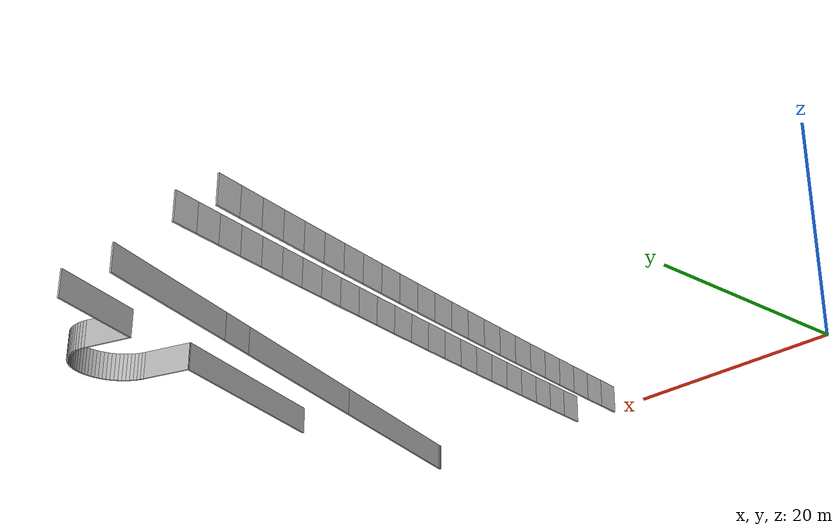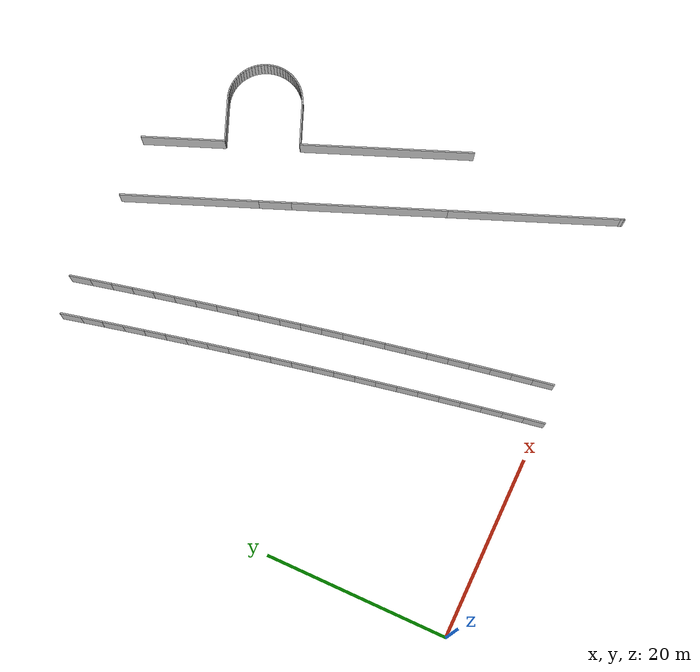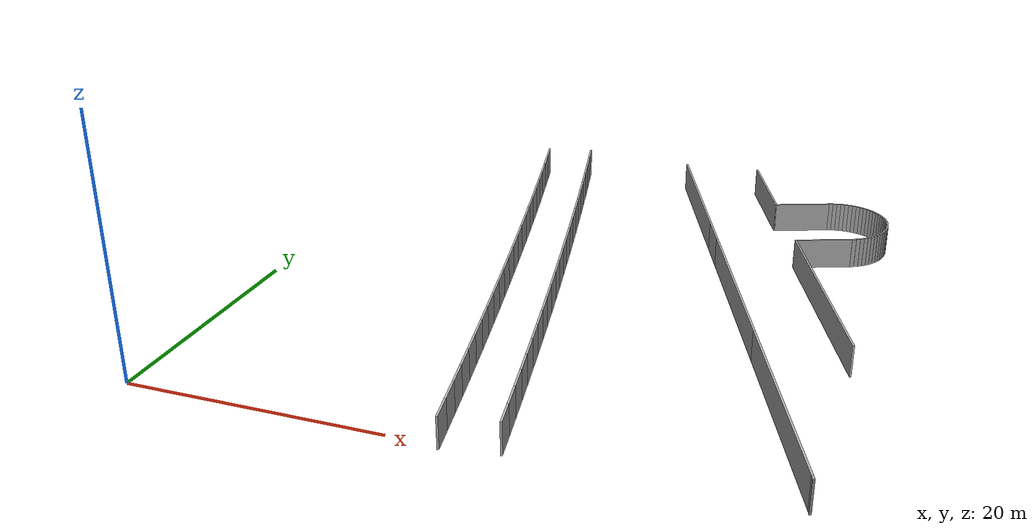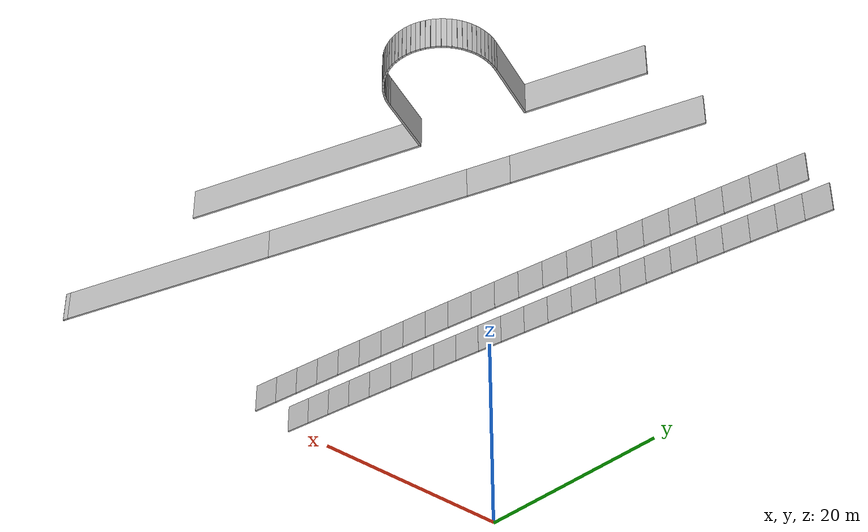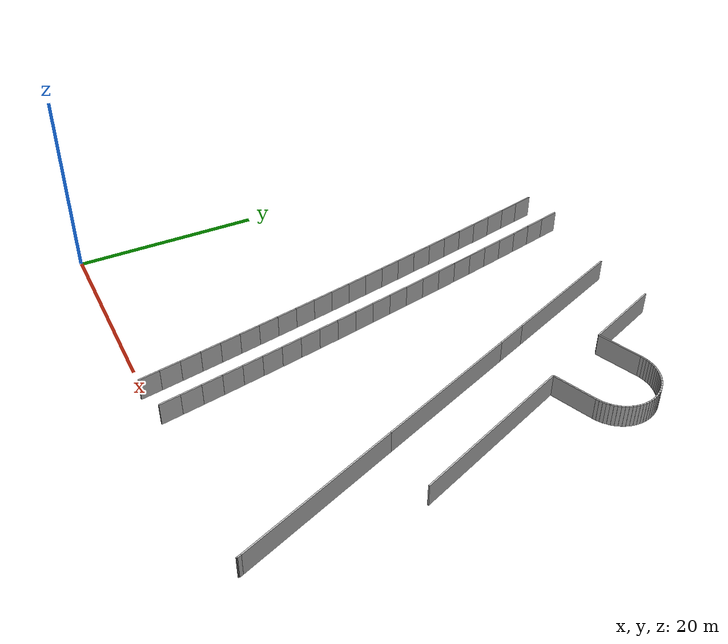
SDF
<?xml version="1.0" ?>
<sdf version="1.6">
  <model name="sps_4628">
    <pose frame="">0 0 0 0 -0 0</pose>
    <static>1</static>
    <self_collide>0</self_collide>
    <allow_auto_disable>0</allow_auto_disable>
    <link name="Wall80">
      <kinematic>0</kinematic>
      <gravity>1</gravity>
      <self_collide>0</self_collide>
      <collision name="collision">
        <geometry>
          <box>
            <size>0.0881448 0.15 2.5</size>
          </box>
        </geometry>
        <pose frame="">0 0 0 0 -0 0</pose>
      </collision>
      <visual name="visual">
        <geometry>
          <box>
            <size>0.0881448 0.15 2.5</size>
          </box>
        </geometry>
        <pose frame="">0 0 0 0 -0 0</pose>
        <cast_shadows>1</cast_shadows>
        <transparency>0.0</transparency>
      </visual>
      <pose frame="">47.404 0.571273 1.25 0 -0 0.37652</pose>
    </link>
    <link name="Wall156">
      <kinematic>0</kinematic>
      <gravity>1</gravity>
      <self_collide>0</self_collide>
      <collision name="collision">
        <geometry>
          <box>
            <size>3.44415 0.15 2.5</size>
          </box>
        </geometry>
        <pose frame="">0 0 0 0 -0 0</pose>
      </collision>
      <visual name="visual">
        <geometry>
          <box>
            <size>3.44415 0.15 2.5</size>
          </box>
        </geometry>
        <pose frame="">0 0 0 0 -0 0</pose>
        <cast_shadows>1</cast_shadows>
        <transparency>0.0</transparency>
      </visual>
      <pose frame="">33.8346 34.9045 1.25 0 0 -1.19321</pose>
    </link>
    <link name="Wall157">
      <kinematic>0</kinematic>
      <gravity>1</gravity>
      <self_collide>0</self_collide>
      <collision name="collision">
        <geometry>
          <box>
            <size>16.5785 0.15 2.5</size>
          </box>
        </geometry>
        <pose frame="">0 0 0 0 -0 0</pose>
      </collision>
      <visual name="visual">
        <geometry>
          <box>
            <size>16.5785 0.15 2.5</size>
          </box>
        </geometry>
        <pose frame="">0 0 0 0 -0 0</pose>
        <cast_shadows>1</cast_shadows>
        <transparency>0.0</transparency>
      </visual>
      <pose frame="">37.5255 25.5984 1.25 0 0 -1.19321</pose>
    </link>
    <link name="Wall158">
      <kinematic>0</kinematic>
      <gravity>1</gravity>
      <self_collide>0</self_collide>
      <collision name="collision">
        <geometry>
          <box>
            <size>18.2175 0.15 2.5</size>
          </box>
        </geometry>
        <pose frame="">0 0 0 0 -0 0</pose>
      </collision>
      <visual name="visual">
        <geometry>
          <box>
            <size>18.2175 0.15 2.5</size>
          </box>
        </geometry>
        <pose frame="">0 0 0 0 -0 0</pose>
        <cast_shadows>1</cast_shadows>
        <transparency>0.0</transparency>
      </visual>
      <pose frame="">43.9397 9.42598 1.25 0 0 -1.19321</pose>
    </link>
    <link name="Wall322">
      <kinematic>0</kinematic>
      <gravity>1</gravity>
      <self_collide>0</self_collide>
      <collision name="collision">
        <geometry>
          <box>
            <size>4.74975 0.15 2.5</size>
          </box>
        </geometry>
        <pose frame="">0 0 0 0 -0 0</pose>
      </collision>
      <visual name="visual">
        <geometry>
          <box>
            <size>4.74975 0.15 2.5</size>
          </box>
        </geometry>
        <pose frame="">0 0 0 0 -0 0</pose>
        <cast_shadows>1</cast_shadows>
        <transparency>0.0</transparency>
      </visual>
      <pose frame="">39.9748 43.4954 1.25 0 0 -2.76404</pose>
    </link>
    <link name="Wall388">
      <kinematic>0</kinematic>
      <gravity>1</gravity>
      <self_collide>0</self_collide>
      <collision name="collision">
        <geometry>
          <box>
            <size>8.94427 0.15 2.5</size>
          </box>
        </geometry>
        <pose frame="">0 0 0 0 -0 0</pose>
      </collision>
      <visual name="visual">
        <geometry>
          <box>
            <size>8.94427 0.15 2.5</size>
          </box>
        </geometry>
        <pose frame="">0 0 0 0 -0 0</pose>
        <cast_shadows>1</cast_shadows>
        <transparency>0.0</transparency>
      </visual>
      <pose frame="">36.1183 46.7769 1.25 0 0 -1.19318</pose>
    </link>
    <link name="Wall389">
      <kinematic>0</kinematic>
      <gravity>1</gravity>
      <self_collide>0</self_collide>
      <collision name="collision">
        <geometry>
          <box>
            <size>18.6084 0.15 2.5</size>
          </box>
        </geometry>
        <pose frame="">0 0 0 0 -0 0</pose>
      </collision>
      <visual name="visual">
        <geometry>
          <box>
            <size>18.6084 0.15 2.5</size>
          </box>
        </geometry>
        <pose frame="">0 0 0 0 -0 0</pose>
        <cast_shadows>1</cast_shadows>
        <transparency>0.0</transparency>
      </visual>
      <pose frame="">44.1558 26.5383 1.25 0 0 -1.19216</pose>
    </link>
    <link name="Wall488">
      <kinematic>0</kinematic>
      <gravity>1</gravity>
      <self_collide>0</self_collide>
      <collision name="collision">
        <geometry>
          <box>
            <size>4.75138 0.15 2.5</size>
          </box>
        </geometry>
        <pose frame="">0 0 0 0 -0 0</pose>
      </collision>
      <visual name="visual">
        <geometry>
          <box>
            <size>4.75138 0.15 2.5</size>
          </box>
        </geometry>
        <pose frame="">0 0 0 0 -0 0</pose>
        <cast_shadows>1</cast_shadows>
        <transparency>0.0</transparency>
      </visual>
      <pose frame="">42.9249 36.0592 1.25 0 -0 0.377513</pose>
    </link>
    <link name="Wall585">
      <kinematic>0</kinematic>
      <gravity>1</gravity>
      <self_collide>0</self_collide>
      <collision name="collision">
        <geometry>
          <box>
            <size>14.7591 0.15 2.5</size>
          </box>
        </geometry>
        <pose frame="">0 0 0 0 -0 0</pose>
      </collision>
      <visual name="visual">
        <geometry>
          <box>
            <size>14.7591 0.15 2.5</size>
          </box>
        </geometry>
        <pose frame="">0 0 0 0 -0 0</pose>
        <cast_shadows>1</cast_shadows>
        <transparency>0.0</transparency>
      </visual>
      <pose frame="">30.4788 43.3649 1.25 0 0 -1.19318</pose>
    </link>
    <link name="Wall587">
      <kinematic>0</kinematic>
      <gravity>1</gravity>
      <self_collide>0</self_collide>
      <collision name="collision">
        <geometry>
          <box>
            <size>0.39949 0.15 2.5</size>
          </box>
        </geometry>
        <pose frame="">0 0 0 0 -0 0</pose>
      </collision>
      <visual name="visual">
        <geometry>
          <box>
            <size>0.39949 0.15 2.5</size>
          </box>
        </geometry>
        <pose frame="">0 0 0 0 -0 0</pose>
        <cast_shadows>1</cast_shadows>
        <transparency>0.0</transparency>
      </visual>
      <pose frame="">47.3715 0.773177 1.25 0 0 -1.19355</pose>
    </link>
    <link name="Wall4621">
      <kinematic>0</kinematic>
      <gravity>1</gravity>
      <self_collide>0</self_collide>
      <collision name="collision">
        <geometry>
          <box>
            <size>2.25472 0.15 2.5</size>
          </box>
        </geometry>
        <pose frame="">0 0 0 0 -0 0</pose>
      </collision>
      <visual name="visual">
        <geometry>
          <box>
            <size>2.25472 0.15 2.5</size>
          </box>
        </geometry>
        <pose frame="">0 0 0 0 -0 0</pose>
        <cast_shadows>1</cast_shadows>
        <transparency>0.0</transparency>
      </visual>
      <pose frame="">27.8527 1.40709 1.25 0 -0 1.74643</pose>
    </link>
    <link name="Wall4622">
      <kinematic>0</kinematic>
      <gravity>1</gravity>
      <self_collide>0</self_collide>
      <collision name="collision">
        <geometry>
          <box>
            <size>2.25462 0.15 2.5</size>
          </box>
        </geometry>
        <pose frame="">0 0 0 0 -0 0</pose>
      </collision>
      <visual name="visual">
        <geometry>
          <box>
            <size>2.25462 0.15 2.5</size>
          </box>
        </geometry>
        <pose frame="">0 0 0 0 -0 0</pose>
        <cast_shadows>1</cast_shadows>
        <transparency>0.0</transparency>
      </visual>
      <pose frame="">27.456 3.6266 1.25 0 -0 1.74881</pose>
    </link>
    <link name="Wall4623">
      <kinematic>0</kinematic>
      <gravity>1</gravity>
      <self_collide>0</self_collide>
      <collision name="collision">
        <geometry>
          <box>
            <size>2.25462 0.15 2.5</size>
          </box>
        </geometry>
        <pose frame="">0 0 0 0 -0 0</pose>
      </collision>
      <visual name="visual">
        <geometry>
          <box>
            <size>2.25462 0.15 2.5</size>
          </box>
        </geometry>
        <pose frame="">0 0 0 0 -0 0</pose>
        <cast_shadows>1</cast_shadows>
        <transparency>0.0</transparency>
      </visual>
      <pose frame="">27.0541 5.84511 1.25 0 -0 1.75123</pose>
    </link>
    <link name="Wall4624">
      <kinematic>0</kinematic>
      <gravity>1</gravity>
      <self_collide>0</self_collide>
      <collision name="collision">
        <geometry>
          <box>
            <size>2.25472 0.15 2.5</size>
          </box>
        </geometry>
        <pose frame="">0 0 0 0 -0 0</pose>
      </collision>
      <visual name="visual">
        <geometry>
          <box>
            <size>2.25472 0.15 2.5</size>
          </box>
        </geometry>
        <pose frame="">0 0 0 0 -0 0</pose>
        <cast_shadows>1</cast_shadows>
        <transparency>0.0</transparency>
      </visual>
      <pose frame="">26.6469 8.0627 1.25 0 -0 1.75356</pose>
    </link>
    <link name="Wall4625">
      <kinematic>0</kinematic>
      <gravity>1</gravity>
      <self_collide>0</self_collide>
      <collision name="collision">
        <geometry>
          <box>
            <size>2.25452 0.15 2.5</size>
          </box>
        </geometry>
        <pose frame="">0 0 0 0 -0 0</pose>
      </collision>
      <visual name="visual">
        <geometry>
          <box>
            <size>2.25452 0.15 2.5</size>
          </box>
        </geometry>
        <pose frame="">0 0 0 0 -0 0</pose>
        <cast_shadows>1</cast_shadows>
        <transparency>0.0</transparency>
      </visual>
      <pose frame="">26.2345 10.2793 1.25 0 -0 1.75592</pose>
    </link>
    <link name="Wall4626">
      <kinematic>0</kinematic>
      <gravity>1</gravity>
      <self_collide>0</self_collide>
      <collision name="collision">
        <geometry>
          <box>
            <size>2.25475 0.15 2.5</size>
          </box>
        </geometry>
        <pose frame="">0 0 0 0 -0 0</pose>
      </collision>
      <visual name="visual">
        <geometry>
          <box>
            <size>2.25475 0.15 2.5</size>
          </box>
        </geometry>
        <pose frame="">0 0 0 0 -0 0</pose>
        <cast_shadows>1</cast_shadows>
        <transparency>0.0</transparency>
      </visual>
      <pose frame="">25.8169 12.4949 1.25 0 -0 1.75835</pose>
    </link>
    <link name="Wall4627">
      <kinematic>0</kinematic>
      <gravity>1</gravity>
      <self_collide>0</self_collide>
      <collision name="collision">
        <geometry>
          <box>
            <size>2.25399 0.15 2.5</size>
          </box>
        </geometry>
        <pose frame="">0 0 0 0 -0 0</pose>
      </collision>
      <visual name="visual">
        <geometry>
          <box>
            <size>2.25399 0.15 2.5</size>
          </box>
        </geometry>
        <pose frame="">0 0 0 0 -0 0</pose>
        <cast_shadows>1</cast_shadows>
        <transparency>0.0</transparency>
      </visual>
      <pose frame="">25.3937 14.7092 1.25 0 -0 1.76092</pose>
    </link>
    <link name="Wall4628">
      <kinematic>0</kinematic>
      <gravity>1</gravity>
      <self_collide>0</self_collide>
      <collision name="collision">
        <geometry>
          <box>
            <size>2.2547 0.15 2.5</size>
          </box>
        </geometry>
        <pose frame="">0 0 0 0 -0 0</pose>
      </collision>
      <visual name="visual">
        <geometry>
          <box>
            <size>2.2547 0.15 2.5</size>
          </box>
        </geometry>
        <pose frame="">0 0 0 0 -0 0</pose>
        <cast_shadows>1</cast_shadows>
        <transparency>0.0</transparency>
      </visual>
      <pose frame="">24.9654 16.9225 1.25 0 -0 1.76296</pose>
    </link>
    <link name="Wall4629">
      <kinematic>0</kinematic>
      <gravity>1</gravity>
      <self_collide>0</self_collide>
      <collision name="collision">
        <geometry>
          <box>
            <size>2.2546 0.15 2.5</size>
          </box>
        </geometry>
        <pose frame="">0 0 0 0 -0 0</pose>
      </collision>
      <visual name="visual">
        <geometry>
          <box>
            <size>2.2546 0.15 2.5</size>
          </box>
        </geometry>
        <pose frame="">0 0 0 0 -0 0</pose>
        <cast_shadows>1</cast_shadows>
        <transparency>0.0</transparency>
      </visual>
      <pose frame="">24.5321 19.1351 1.25 0 -0 1.76542</pose>
    </link>
    <link name="Wall4630">
      <kinematic>0</kinematic>
      <gravity>1</gravity>
      <self_collide>0</self_collide>
      <collision name="collision">
        <geometry>
          <box>
            <size>2.25467 0.15 2.5</size>
          </box>
        </geometry>
        <pose frame="">0 0 0 0 -0 0</pose>
      </collision>
      <visual name="visual">
        <geometry>
          <box>
            <size>2.25467 0.15 2.5</size>
          </box>
        </geometry>
        <pose frame="">0 0 0 0 -0 0</pose>
        <cast_shadows>1</cast_shadows>
        <transparency>0.0</transparency>
      </visual>
      <pose frame="">24.0933 21.3466 1.25 0 -0 1.76793</pose>
    </link>
    <link name="Wall4631">
      <kinematic>0</kinematic>
      <gravity>1</gravity>
      <self_collide>0</self_collide>
      <collision name="collision">
        <geometry>
          <box>
            <size>2.25445 0.15 2.5</size>
          </box>
        </geometry>
        <pose frame="">0 0 0 0 -0 0</pose>
      </collision>
      <visual name="visual">
        <geometry>
          <box>
            <size>2.25445 0.15 2.5</size>
          </box>
        </geometry>
        <pose frame="">0 0 0 0 -0 0</pose>
        <cast_shadows>1</cast_shadows>
        <transparency>0.0</transparency>
      </visual>
      <pose frame="">23.6492 23.557 1.25 0 -0 1.77021</pose>
    </link>
    <link name="Wall4632">
      <kinematic>0</kinematic>
      <gravity>1</gravity>
      <self_collide>0</self_collide>
      <collision name="collision">
        <geometry>
          <box>
            <size>2.25471 0.15 2.5</size>
          </box>
        </geometry>
        <pose frame="">0 0 0 0 -0 0</pose>
      </collision>
      <visual name="visual">
        <geometry>
          <box>
            <size>2.25471 0.15 2.5</size>
          </box>
        </geometry>
        <pose frame="">0 0 0 0 -0 0</pose>
        <cast_shadows>1</cast_shadows>
        <transparency>0.0</transparency>
      </visual>
      <pose frame="">23.2 25.7664 1.25 0 -0 1.77253</pose>
    </link>
    <link name="Wall4633">
      <kinematic>0</kinematic>
      <gravity>1</gravity>
      <self_collide>0</self_collide>
      <collision name="collision">
        <geometry>
          <box>
            <size>2.25463 0.15 2.5</size>
          </box>
        </geometry>
        <pose frame="">0 0 0 0 -0 0</pose>
      </collision>
      <visual name="visual">
        <geometry>
          <box>
            <size>2.25463 0.15 2.5</size>
          </box>
        </geometry>
        <pose frame="">0 0 0 0 -0 0</pose>
        <cast_shadows>1</cast_shadows>
        <transparency>0.0</transparency>
      </visual>
      <pose frame="">22.7456 27.9748 1.25 0 -0 1.77492</pose>
    </link>
    <link name="Wall4634">
      <kinematic>0</kinematic>
      <gravity>1</gravity>
      <self_collide>0</self_collide>
      <collision name="collision">
        <geometry>
          <box>
            <size>2.25471 0.15 2.5</size>
          </box>
        </geometry>
        <pose frame="">0 0 0 0 -0 0</pose>
      </collision>
      <visual name="visual">
        <geometry>
          <box>
            <size>2.25471 0.15 2.5</size>
          </box>
        </geometry>
        <pose frame="">0 0 0 0 -0 0</pose>
        <cast_shadows>1</cast_shadows>
        <transparency>0.0</transparency>
      </visual>
      <pose frame="">22.2858 30.1821 1.25 0 -0 1.77734</pose>
    </link>
    <link name="Wall4635">
      <kinematic>0</kinematic>
      <gravity>1</gravity>
      <self_collide>0</self_collide>
      <collision name="collision">
        <geometry>
          <box>
            <size>2.25465 0.15 2.5</size>
          </box>
        </geometry>
        <pose frame="">0 0 0 0 -0 0</pose>
      </collision>
      <visual name="visual">
        <geometry>
          <box>
            <size>2.25465 0.15 2.5</size>
          </box>
        </geometry>
        <pose frame="">0 0 0 0 -0 0</pose>
        <cast_shadows>1</cast_shadows>
        <transparency>0.0</transparency>
      </visual>
      <pose frame="">21.8209 32.3883 1.25 0 -0 1.7797</pose>
    </link>
    <link name="Wall4636">
      <kinematic>0</kinematic>
      <gravity>1</gravity>
      <self_collide>0</self_collide>
      <collision name="collision">
        <geometry>
          <box>
            <size>2.25454 0.15 2.5</size>
          </box>
        </geometry>
        <pose frame="">0 0 0 0 -0 0</pose>
      </collision>
      <visual name="visual">
        <geometry>
          <box>
            <size>2.25454 0.15 2.5</size>
          </box>
        </geometry>
        <pose frame="">0 0 0 0 -0 0</pose>
        <cast_shadows>1</cast_shadows>
        <transparency>0.0</transparency>
      </visual>
      <pose frame="">21.3507 34.5933 1.25 0 -0 1.78207</pose>
    </link>
    <link name="Wall4637">
      <kinematic>0</kinematic>
      <gravity>1</gravity>
      <self_collide>0</self_collide>
      <collision name="collision">
        <geometry>
          <box>
            <size>2.25467 0.15 2.5</size>
          </box>
        </geometry>
        <pose frame="">0 0 0 0 -0 0</pose>
      </collision>
      <visual name="visual">
        <geometry>
          <box>
            <size>2.25467 0.15 2.5</size>
          </box>
        </geometry>
        <pose frame="">0 0 0 0 -0 0</pose>
        <cast_shadows>1</cast_shadows>
        <transparency>0.0</transparency>
      </visual>
      <pose frame="">20.8752 36.7972 1.25 0 -0 1.78452</pose>
    </link>
    <link name="Wall4638">
      <kinematic>0</kinematic>
      <gravity>1</gravity>
      <self_collide>0</self_collide>
      <collision name="collision">
        <geometry>
          <box>
            <size>2.25482 0.15 2.5</size>
          </box>
        </geometry>
        <pose frame="">0 0 0 0 -0 0</pose>
      </collision>
      <visual name="visual">
        <geometry>
          <box>
            <size>2.25482 0.15 2.5</size>
          </box>
        </geometry>
        <pose frame="">0 0 0 0 -0 0</pose>
        <cast_shadows>1</cast_shadows>
        <transparency>0.0</transparency>
      </visual>
      <pose frame="">20.3944 39.0001 1.25 0 -0 1.78686</pose>
    </link>
    <link name="Wall4639">
      <kinematic>0</kinematic>
      <gravity>1</gravity>
      <self_collide>0</self_collide>
      <collision name="collision">
        <geometry>
          <box>
            <size>2.25435 0.15 2.5</size>
          </box>
        </geometry>
        <pose frame="">0 0 0 0 -0 0</pose>
      </collision>
      <visual name="visual">
        <geometry>
          <box>
            <size>2.25435 0.15 2.5</size>
          </box>
        </geometry>
        <pose frame="">0 0 0 0 -0 0</pose>
        <cast_shadows>1</cast_shadows>
        <transparency>0.0</transparency>
      </visual>
      <pose frame="">19.9085 41.2017 1.25 0 -0 1.78918</pose>
    </link>
    <link name="Wall4640">
      <kinematic>0</kinematic>
      <gravity>1</gravity>
      <self_collide>0</self_collide>
      <collision name="collision">
        <geometry>
          <box>
            <size>2.25458 0.15 2.5</size>
          </box>
        </geometry>
        <pose frame="">0 0 0 0 -0 0</pose>
      </collision>
      <visual name="visual">
        <geometry>
          <box>
            <size>2.25458 0.15 2.5</size>
          </box>
        </geometry>
        <pose frame="">0 0 0 0 -0 0</pose>
        <cast_shadows>1</cast_shadows>
        <transparency>0.0</transparency>
      </visual>
      <pose frame="">19.4174 43.402 1.25 0 -0 1.79162</pose>
    </link>
    <link name="Wall4641">
      <kinematic>0</kinematic>
      <gravity>1</gravity>
      <self_collide>0</self_collide>
      <collision name="collision">
        <geometry>
          <box>
            <size>2.25469 0.15 2.5</size>
          </box>
        </geometry>
        <pose frame="">0 0 0 0 -0 0</pose>
      </collision>
      <visual name="visual">
        <geometry>
          <box>
            <size>2.25469 0.15 2.5</size>
          </box>
        </geometry>
        <pose frame="">0 0 0 0 -0 0</pose>
        <cast_shadows>1</cast_shadows>
        <transparency>0.0</transparency>
      </visual>
      <pose frame="">18.921 45.6013 1.25 0 -0 1.79394</pose>
    </link>
    <link name="Wall4642">
      <kinematic>0</kinematic>
      <gravity>1</gravity>
      <self_collide>0</self_collide>
      <collision name="collision">
        <geometry>
          <box>
            <size>2.25436 0.15 2.5</size>
          </box>
        </geometry>
        <pose frame="">0 0 0 0 -0 0</pose>
      </collision>
      <visual name="visual">
        <geometry>
          <box>
            <size>2.25436 0.15 2.5</size>
          </box>
        </geometry>
        <pose frame="">0 0 0 0 -0 0</pose>
        <cast_shadows>1</cast_shadows>
        <transparency>0.0</transparency>
      </visual>
      <pose frame="">18.4193 47.7993 1.25 0 -0 1.79645</pose>
    </link>
    <link name="Wall4643">
      <kinematic>0</kinematic>
      <gravity>1</gravity>
      <self_collide>0</self_collide>
      <collision name="collision">
        <geometry>
          <box>
            <size>2.25453 0.15 2.5</size>
          </box>
        </geometry>
        <pose frame="">0 0 0 0 -0 0</pose>
      </collision>
      <visual name="visual">
        <geometry>
          <box>
            <size>2.25453 0.15 2.5</size>
          </box>
        </geometry>
        <pose frame="">0 0 0 0 -0 0</pose>
        <cast_shadows>1</cast_shadows>
        <transparency>0.0</transparency>
      </visual>
      <pose frame="">17.9123 49.996 1.25 0 -0 1.79882</pose>
    </link>
    <link name="Wall6346">
      <kinematic>0</kinematic>
      <gravity>1</gravity>
      <self_collide>0</self_collide>
      <collision name="collision">
        <geometry>
          <box>
            <size>2.24468 0.15 2.5</size>
          </box>
        </geometry>
        <pose frame="">0 0 0 0 -0 0</pose>
      </collision>
      <visual name="visual">
        <geometry>
          <box>
            <size>2.24468 0.15 2.5</size>
          </box>
        </geometry>
        <pose frame="">0 0 0 0 -0 0</pose>
        <cast_shadows>1</cast_shadows>
        <transparency>0.0</transparency>
      </visual>
      <pose frame="">23.7769 0.683394 1.25 0 -0 1.74643</pose>
    </link>
    <link name="Wall6347">
      <kinematic>0</kinematic>
      <gravity>1</gravity>
      <self_collide>0</self_collide>
      <collision name="collision">
        <geometry>
          <box>
            <size>2.24487 0.15 2.5</size>
          </box>
        </geometry>
        <pose frame="">0 0 0 0 -0 0</pose>
      </collision>
      <visual name="visual">
        <geometry>
          <box>
            <size>2.24487 0.15 2.5</size>
          </box>
        </geometry>
        <pose frame="">0 0 0 0 -0 0</pose>
        <cast_shadows>1</cast_shadows>
        <transparency>0.0</transparency>
      </visual>
      <pose frame="">23.3821 2.89317 1.25 0 -0 1.74876</pose>
    </link>
    <link name="Wall6348">
      <kinematic>0</kinematic>
      <gravity>1</gravity>
      <self_collide>0</self_collide>
      <collision name="collision">
        <geometry>
          <box>
            <size>2.2449 0.15 2.5</size>
          </box>
        </geometry>
        <pose frame="">0 0 0 0 -0 0</pose>
      </collision>
      <visual name="visual">
        <geometry>
          <box>
            <size>2.2449 0.15 2.5</size>
          </box>
        </geometry>
        <pose frame="">0 0 0 0 -0 0</pose>
        <cast_shadows>1</cast_shadows>
        <transparency>0.0</transparency>
      </visual>
      <pose frame="">22.982 5.1021 1.25 0 -0 1.75127</pose>
    </link>
    <link name="Wall6349">
      <kinematic>0</kinematic>
      <gravity>1</gravity>
      <self_collide>0</self_collide>
      <collision name="collision">
        <geometry>
          <box>
            <size>2.24452 0.15 2.5</size>
          </box>
        </geometry>
        <pose frame="">0 0 0 0 -0 0</pose>
      </collision>
      <visual name="visual">
        <geometry>
          <box>
            <size>2.24452 0.15 2.5</size>
          </box>
        </geometry>
        <pose frame="">0 0 0 0 -0 0</pose>
        <cast_shadows>1</cast_shadows>
        <transparency>0.0</transparency>
      </visual>
      <pose frame="">22.5766 7.30989 1.25 0 -0 1.75351</pose>
    </link>
    <link name="Wall6350">
      <kinematic>0</kinematic>
      <gravity>1</gravity>
      <self_collide>0</self_collide>
      <collision name="collision">
        <geometry>
          <box>
            <size>2.24496 0.15 2.5</size>
          </box>
        </geometry>
        <pose frame="">0 0 0 0 -0 0</pose>
      </collision>
      <visual name="visual">
        <geometry>
          <box>
            <size>2.24496 0.15 2.5</size>
          </box>
        </geometry>
        <pose frame="">0 0 0 0 -0 0</pose>
        <cast_shadows>1</cast_shadows>
        <transparency>0.0</transparency>
      </visual>
      <pose frame="">22.166 9.51677 1.25 0 -0 1.75591</pose>
    </link>
    <link name="Wall6351">
      <kinematic>0</kinematic>
      <gravity>1</gravity>
      <self_collide>0</self_collide>
      <collision name="collision">
        <geometry>
          <box>
            <size>2.24478 0.15 2.5</size>
          </box>
        </geometry>
        <pose frame="">0 0 0 0 -0 0</pose>
      </collision>
      <visual name="visual">
        <geometry>
          <box>
            <size>2.24478 0.15 2.5</size>
          </box>
        </geometry>
        <pose frame="">0 0 0 0 -0 0</pose>
        <cast_shadows>1</cast_shadows>
        <transparency>0.0</transparency>
      </visual>
      <pose frame="">21.7502 11.7228 1.25 0 -0 1.75828</pose>
    </link>
    <link name="Wall6352">
      <kinematic>0</kinematic>
      <gravity>1</gravity>
      <self_collide>0</self_collide>
      <collision name="collision">
        <geometry>
          <box>
            <size>2.24477 0.15 2.5</size>
          </box>
        </geometry>
        <pose frame="">0 0 0 0 -0 0</pose>
      </collision>
      <visual name="visual">
        <geometry>
          <box>
            <size>2.24477 0.15 2.5</size>
          </box>
        </geometry>
        <pose frame="">0 0 0 0 -0 0</pose>
        <cast_shadows>1</cast_shadows>
        <transparency>0.0</transparency>
      </visual>
      <pose frame="">21.3292 13.9277 1.25 0 -0 1.76072</pose>
    </link>
    <link name="Wall6353">
      <kinematic>0</kinematic>
      <gravity>1</gravity>
      <self_collide>0</self_collide>
      <collision name="collision">
        <geometry>
          <box>
            <size>2.24441 0.15 2.5</size>
          </box>
        </geometry>
        <pose frame="">0 0 0 0 -0 0</pose>
      </collision>
      <visual name="visual">
        <geometry>
          <box>
            <size>2.24441 0.15 2.5</size>
          </box>
        </geometry>
        <pose frame="">0 0 0 0 -0 0</pose>
        <cast_shadows>1</cast_shadows>
        <transparency>0.0</transparency>
      </visual>
      <pose frame="">20.9025 16.1314 1.25 0 -0 1.76332</pose>
    </link>
    <link name="Wall6354">
      <kinematic>0</kinematic>
      <gravity>1</gravity>
      <self_collide>0</self_collide>
      <collision name="collision">
        <geometry>
          <box>
            <size>2.24456 0.15 2.5</size>
          </box>
        </geometry>
        <pose frame="">0 0 0 0 -0 0</pose>
      </collision>
      <visual name="visual">
        <geometry>
          <box>
            <size>2.24456 0.15 2.5</size>
          </box>
        </geometry>
        <pose frame="">0 0 0 0 -0 0</pose>
        <cast_shadows>1</cast_shadows>
        <transparency>0.0</transparency>
      </visual>
      <pose frame="">20.4708 18.334 1.25 0 -0 1.76536</pose>
    </link>
    <link name="Wall6355">
      <kinematic>0</kinematic>
      <gravity>1</gravity>
      <self_collide>0</self_collide>
      <collision name="collision">
        <geometry>
          <box>
            <size>2.24507 0.15 2.5</size>
          </box>
        </geometry>
        <pose frame="">0 0 0 0 -0 0</pose>
      </collision>
      <visual name="visual">
        <geometry>
          <box>
            <size>2.24507 0.15 2.5</size>
          </box>
        </geometry>
        <pose frame="">0 0 0 0 -0 0</pose>
        <cast_shadows>1</cast_shadows>
        <transparency>0.0</transparency>
      </visual>
      <pose frame="">20.034 20.5359 1.25 0 -0 1.76789</pose>
    </link>
    <link name="Wall6356">
      <kinematic>0</kinematic>
      <gravity>1</gravity>
      <self_collide>0</self_collide>
      <collision name="collision">
        <geometry>
          <box>
            <size>2.24466 0.15 2.5</size>
          </box>
        </geometry>
        <pose frame="">0 0 0 0 -0 0</pose>
      </collision>
      <visual name="visual">
        <geometry>
          <box>
            <size>2.24466 0.15 2.5</size>
          </box>
        </geometry>
        <pose frame="">0 0 0 0 -0 0</pose>
        <cast_shadows>1</cast_shadows>
        <transparency>0.0</transparency>
      </visual>
      <pose frame="">19.5919 22.7368 1.25 0 -0 1.77018</pose>
    </link>
    <link name="Wall6357">
      <kinematic>0</kinematic>
      <gravity>1</gravity>
      <self_collide>0</self_collide>
      <collision name="collision">
        <geometry>
          <box>
            <size>2.24474 0.15 2.5</size>
          </box>
        </geometry>
        <pose frame="">0 0 0 0 -0 0</pose>
      </collision>
      <visual name="visual">
        <geometry>
          <box>
            <size>2.24474 0.15 2.5</size>
          </box>
        </geometry>
        <pose frame="">0 0 0 0 -0 0</pose>
        <cast_shadows>1</cast_shadows>
        <transparency>0.0</transparency>
      </visual>
      <pose frame="">19.1448 24.9365 1.25 0 -0 1.77253</pose>
    </link>
    <link name="Wall6358">
      <kinematic>0</kinematic>
      <gravity>1</gravity>
      <self_collide>0</self_collide>
      <collision name="collision">
        <geometry>
          <box>
            <size>2.24482 0.15 2.5</size>
          </box>
        </geometry>
        <pose frame="">0 0 0 0 -0 0</pose>
      </collision>
      <visual name="visual">
        <geometry>
          <box>
            <size>2.24482 0.15 2.5</size>
          </box>
        </geometry>
        <pose frame="">0 0 0 0 -0 0</pose>
        <cast_shadows>1</cast_shadows>
        <transparency>0.0</transparency>
      </visual>
      <pose frame="">18.6923 27.1352 1.25 0 -0 1.77499</pose>
    </link>
    <link name="Wall6359">
      <kinematic>0</kinematic>
      <gravity>1</gravity>
      <self_collide>0</self_collide>
      <collision name="collision">
        <geometry>
          <box>
            <size>2.24493 0.15 2.5</size>
          </box>
        </geometry>
        <pose frame="">0 0 0 0 -0 0</pose>
      </collision>
      <visual name="visual">
        <geometry>
          <box>
            <size>2.24493 0.15 2.5</size>
          </box>
        </geometry>
        <pose frame="">0 0 0 0 -0 0</pose>
        <cast_shadows>1</cast_shadows>
        <transparency>0.0</transparency>
      </visual>
      <pose frame="">18.2345 29.3329 1.25 0 -0 1.77737</pose>
    </link>
    <link name="Wall6360">
      <kinematic>0</kinematic>
      <gravity>1</gravity>
      <self_collide>0</self_collide>
      <collision name="collision">
        <geometry>
          <box>
            <size>2.24458 0.15 2.5</size>
          </box>
        </geometry>
        <pose frame="">0 0 0 0 -0 0</pose>
      </collision>
      <visual name="visual">
        <geometry>
          <box>
            <size>2.24458 0.15 2.5</size>
          </box>
        </geometry>
        <pose frame="">0 0 0 0 -0 0</pose>
        <cast_shadows>1</cast_shadows>
        <transparency>0.0</transparency>
      </visual>
      <pose frame="">17.7715 31.5294 1.25 0 -0 1.77965</pose>
    </link>
    <link name="Wall6361">
      <kinematic>0</kinematic>
      <gravity>1</gravity>
      <self_collide>0</self_collide>
      <collision name="collision">
        <geometry>
          <box>
            <size>2.24497 0.15 2.5</size>
          </box>
        </geometry>
        <pose frame="">0 0 0 0 -0 0</pose>
      </collision>
      <visual name="visual">
        <geometry>
          <box>
            <size>2.24497 0.15 2.5</size>
          </box>
        </geometry>
        <pose frame="">0 0 0 0 -0 0</pose>
        <cast_shadows>1</cast_shadows>
        <transparency>0.0</transparency>
      </visual>
      <pose frame="">17.3033 33.7248 1.25 0 -0 1.78217</pose>
    </link>
    <link name="Wall6362">
      <kinematic>0</kinematic>
      <gravity>1</gravity>
      <self_collide>0</self_collide>
      <collision name="collision">
        <geometry>
          <box>
            <size>2.24461 0.15 2.5</size>
          </box>
        </geometry>
        <pose frame="">0 0 0 0 -0 0</pose>
      </collision>
      <visual name="visual">
        <geometry>
          <box>
            <size>2.24461 0.15 2.5</size>
          </box>
        </geometry>
        <pose frame="">0 0 0 0 -0 0</pose>
        <cast_shadows>1</cast_shadows>
        <transparency>0.0</transparency>
      </visual>
      <pose frame="">16.8299 35.9191 1.25 0 -0 1.78438</pose>
    </link>
    <link name="Wall6363">
      <kinematic>0</kinematic>
      <gravity>1</gravity>
      <self_collide>0</self_collide>
      <collision name="collision">
        <geometry>
          <box>
            <size>2.24481 0.15 2.5</size>
          </box>
        </geometry>
        <pose frame="">0 0 0 0 -0 0</pose>
      </collision>
      <visual name="visual">
        <geometry>
          <box>
            <size>2.24481 0.15 2.5</size>
          </box>
        </geometry>
        <pose frame="">0 0 0 0 -0 0</pose>
        <cast_shadows>1</cast_shadows>
        <transparency>0.0</transparency>
      </visual>
      <pose frame="">16.3515 38.1122 1.25 0 -0 1.78683</pose>
    </link>
    <link name="Wall6364">
      <kinematic>0</kinematic>
      <gravity>1</gravity>
      <self_collide>0</self_collide>
      <collision name="collision">
        <geometry>
          <box>
            <size>2.24491 0.15 2.5</size>
          </box>
        </geometry>
        <pose frame="">0 0 0 0 -0 0</pose>
      </collision>
      <visual name="visual">
        <geometry>
          <box>
            <size>2.24491 0.15 2.5</size>
          </box>
        </geometry>
        <pose frame="">0 0 0 0 -0 0</pose>
        <cast_shadows>1</cast_shadows>
        <transparency>0.0</transparency>
      </visual>
      <pose frame="">15.8677 40.3043 1.25 0 -0 1.78919</pose>
    </link>
    <link name="Wall6365">
      <kinematic>0</kinematic>
      <gravity>1</gravity>
      <self_collide>0</self_collide>
      <collision name="collision">
        <geometry>
          <box>
            <size>2.24473 0.15 2.5</size>
          </box>
        </geometry>
        <pose frame="">0 0 0 0 -0 0</pose>
      </collision>
      <visual name="visual">
        <geometry>
          <box>
            <size>2.24473 0.15 2.5</size>
          </box>
        </geometry>
        <pose frame="">0 0 0 0 -0 0</pose>
        <cast_shadows>1</cast_shadows>
        <transparency>0.0</transparency>
      </visual>
      <pose frame="">15.3786 42.4952 1.25 0 -0 1.79169</pose>
    </link>
    <link name="Wall6366">
      <kinematic>0</kinematic>
      <gravity>1</gravity>
      <self_collide>0</self_collide>
      <collision name="collision">
        <geometry>
          <box>
            <size>2.2447 0.15 2.5</size>
          </box>
        </geometry>
        <pose frame="">0 0 0 0 -0 0</pose>
      </collision>
      <visual name="visual">
        <geometry>
          <box>
            <size>2.2447 0.15 2.5</size>
          </box>
        </geometry>
        <pose frame="">0 0 0 0 -0 0</pose>
        <cast_shadows>1</cast_shadows>
        <transparency>0.0</transparency>
      </visual>
      <pose frame="">14.8842 44.6848 1.25 0 -0 1.79398</pose>
    </link>
    <link name="Wall6367">
      <kinematic>0</kinematic>
      <gravity>1</gravity>
      <self_collide>0</self_collide>
      <collision name="collision">
        <geometry>
          <box>
            <size>2.24483 0.15 2.5</size>
          </box>
        </geometry>
        <pose frame="">0 0 0 0 -0 0</pose>
      </collision>
      <visual name="visual">
        <geometry>
          <box>
            <size>2.24483 0.15 2.5</size>
          </box>
        </geometry>
        <pose frame="">0 0 0 0 -0 0</pose>
        <cast_shadows>1</cast_shadows>
        <transparency>0.0</transparency>
      </visual>
      <pose frame="">14.3848 46.8733 1.25 0 -0 1.79631</pose>
    </link>
    <link name="Wall6368">
      <kinematic>0</kinematic>
      <gravity>1</gravity>
      <self_collide>0</self_collide>
      <collision name="collision">
        <geometry>
          <box>
            <size>2.24446 0.15 2.5</size>
          </box>
        </geometry>
        <pose frame="">0 0 0 0 -0 0</pose>
      </collision>
      <visual name="visual">
        <geometry>
          <box>
            <size>2.24446 0.15 2.5</size>
          </box>
        </geometry>
        <pose frame="">0 0 0 0 -0 0</pose>
        <cast_shadows>1</cast_shadows>
        <transparency>0.0</transparency>
      </visual>
      <pose frame="">13.8803 49.0605 1.25 0 -0 1.79874</pose>
    </link>
    <link name="Wall7311">
      <kinematic>0</kinematic>
      <gravity>1</gravity>
      <self_collide>0</self_collide>
      <collision name="collision">
        <geometry>
          <box>
            <size>0.348288 0.15 2.5</size>
          </box>
        </geometry>
        <pose frame="">0 0 0 0 -0 0</pose>
      </collision>
      <visual name="visual">
        <geometry>
          <box>
            <size>0.348288 0.15 2.5</size>
          </box>
        </geometry>
        <pose frame="">0 0 0 0 -0 0</pose>
        <cast_shadows>1</cast_shadows>
        <transparency>0.0</transparency>
      </visual>
      <pose frame="">45.292 37.0066 1.25 0 -0 0.424452</pose>
    </link>
    <link name="Wall7312">
      <kinematic>0</kinematic>
      <gravity>1</gravity>
      <self_collide>0</self_collide>
      <collision name="collision">
        <geometry>
          <box>
            <size>0.348329 0.15 2.5</size>
          </box>
        </geometry>
        <pose frame="">0 0 0 0 -0 0</pose>
      </collision>
      <visual name="visual">
        <geometry>
          <box>
            <size>0.348329 0.15 2.5</size>
          </box>
        </geometry>
        <pose frame="">0 0 0 0 -0 0</pose>
        <cast_shadows>1</cast_shadows>
        <transparency>0.0</transparency>
      </visual>
      <pose frame="">45.6026 37.1635 1.25 0 -0 0.510996</pose>
    </link>
    <link name="Wall7313">
      <kinematic>0</kinematic>
      <gravity>1</gravity>
      <self_collide>0</self_collide>
      <collision name="collision">
        <geometry>
          <box>
            <size>0.348315 0.15 2.5</size>
          </box>
        </geometry>
        <pose frame="">0 0 0 0 -0 0</pose>
      </collision>
      <visual name="visual">
        <geometry>
          <box>
            <size>0.348315 0.15 2.5</size>
          </box>
        </geometry>
        <pose frame="">0 0 0 0 -0 0</pose>
        <cast_shadows>1</cast_shadows>
        <transparency>0.0</transparency>
      </visual>
      <pose frame="">45.8984 37.3468 1.25 0 -0 0.598452</pose>
    </link>
    <link name="Wall7314">
      <kinematic>0</kinematic>
      <gravity>1</gravity>
      <self_collide>0</self_collide>
      <collision name="collision">
        <geometry>
          <box>
            <size>0.348333 0.15 2.5</size>
          </box>
        </geometry>
        <pose frame="">0 0 0 0 -0 0</pose>
      </collision>
      <visual name="visual">
        <geometry>
          <box>
            <size>0.348333 0.15 2.5</size>
          </box>
        </geometry>
        <pose frame="">0 0 0 0 -0 0</pose>
        <cast_shadows>1</cast_shadows>
        <transparency>0.0</transparency>
      </visual>
      <pose frame="">46.1771 37.5552 1.25 0 -0 0.685742</pose>
    </link>
    <link name="Wall7315">
      <kinematic>0</kinematic>
      <gravity>1</gravity>
      <self_collide>0</self_collide>
      <collision name="collision">
        <geometry>
          <box>
            <size>0.348231 0.15 2.5</size>
          </box>
        </geometry>
        <pose frame="">0 0 0 0 -0 0</pose>
      </collision>
      <visual name="visual">
        <geometry>
          <box>
            <size>0.348231 0.15 2.5</size>
          </box>
        </geometry>
        <pose frame="">0 0 0 0 -0 0</pose>
        <cast_shadows>1</cast_shadows>
        <transparency>0.0</transparency>
      </visual>
      <pose frame="">46.4365 37.787 1.25 0 -0 0.772508</pose>
    </link>
    <link name="Wall7316">
      <kinematic>0</kinematic>
      <gravity>1</gravity>
      <self_collide>0</self_collide>
      <collision name="collision">
        <geometry>
          <box>
            <size>0.348428 0.15 2.5</size>
          </box>
        </geometry>
        <pose frame="">0 0 0 0 -0 0</pose>
      </collision>
      <visual name="visual">
        <geometry>
          <box>
            <size>0.348428 0.15 2.5</size>
          </box>
        </geometry>
        <pose frame="">0 0 0 0 -0 0</pose>
        <cast_shadows>1</cast_shadows>
        <transparency>0.0</transparency>
      </visual>
      <pose frame="">46.6749 38.0405 1.25 0 -0 0.859662</pose>
    </link>
    <link name="Wall7317">
      <kinematic>0</kinematic>
      <gravity>1</gravity>
      <self_collide>0</self_collide>
      <collision name="collision">
        <geometry>
          <box>
            <size>0.348312 0.15 2.5</size>
          </box>
        </geometry>
        <pose frame="">0 0 0 0 -0 0</pose>
      </collision>
      <visual name="visual">
        <geometry>
          <box>
            <size>0.348312 0.15 2.5</size>
          </box>
        </geometry>
        <pose frame="">0 0 0 0 -0 0</pose>
        <cast_shadows>1</cast_shadows>
        <transparency>0.0</transparency>
      </visual>
      <pose frame="">46.8903 38.3139 1.25 0 -0 0.947308</pose>
    </link>
    <link name="Wall7318">
      <kinematic>0</kinematic>
      <gravity>1</gravity>
      <self_collide>0</self_collide>
      <collision name="collision">
        <geometry>
          <box>
            <size>0.348254 0.15 2.5</size>
          </box>
        </geometry>
        <pose frame="">0 0 0 0 -0 0</pose>
      </collision>
      <visual name="visual">
        <geometry>
          <box>
            <size>0.348254 0.15 2.5</size>
          </box>
        </geometry>
        <pose frame="">0 0 0 0 -0 0</pose>
        <cast_shadows>1</cast_shadows>
        <transparency>0.0</transparency>
      </visual>
      <pose frame="">47.0811 38.6049 1.25 0 -0 1.03356</pose>
    </link>
    <link name="Wall7319">
      <kinematic>0</kinematic>
      <gravity>1</gravity>
      <self_collide>0</self_collide>
      <collision name="collision">
        <geometry>
          <box>
            <size>0.348245 0.15 2.5</size>
          </box>
        </geometry>
        <pose frame="">0 0 0 0 -0 0</pose>
      </collision>
      <visual name="visual">
        <geometry>
          <box>
            <size>0.348245 0.15 2.5</size>
          </box>
        </geometry>
        <pose frame="">0 0 0 0 -0 0</pose>
        <cast_shadows>1</cast_shadows>
        <transparency>0.0</transparency>
      </visual>
      <pose frame="">47.246 38.9113 1.25 0 -0 1.12094</pose>
    </link>
    <link name="Wall7320">
      <kinematic>0</kinematic>
      <gravity>1</gravity>
      <self_collide>0</self_collide>
      <collision name="collision">
        <geometry>
          <box>
            <size>0.348461 0.15 2.5</size>
          </box>
        </geometry>
        <pose frame="">0 0 0 0 -0 0</pose>
      </collision>
      <visual name="visual">
        <geometry>
          <box>
            <size>0.348461 0.15 2.5</size>
          </box>
        </geometry>
        <pose frame="">0 0 0 0 -0 0</pose>
        <cast_shadows>1</cast_shadows>
        <transparency>0.0</transparency>
      </visual>
      <pose frame="">47.3835 39.231 1.25 0 -0 1.20821</pose>
    </link>
    <link name="Wall7321">
      <kinematic>0</kinematic>
      <gravity>1</gravity>
      <self_collide>0</self_collide>
      <collision name="collision">
        <geometry>
          <box>
            <size>0.348299 0.15 2.5</size>
          </box>
        </geometry>
        <pose frame="">0 0 0 0 -0 0</pose>
      </collision>
      <visual name="visual">
        <geometry>
          <box>
            <size>0.348299 0.15 2.5</size>
          </box>
        </geometry>
        <pose frame="">0 0 0 0 -0 0</pose>
        <cast_shadows>1</cast_shadows>
        <transparency>0.0</transparency>
      </visual>
      <pose frame="">47.4926 39.5615 1.25 0 -0 1.29572</pose>
    </link>
    <link name="Wall7322">
      <kinematic>0</kinematic>
      <gravity>1</gravity>
      <self_collide>0</self_collide>
      <collision name="collision">
        <geometry>
          <box>
            <size>0.348231 0.15 2.5</size>
          </box>
        </geometry>
        <pose frame="">0 0 0 0 -0 0</pose>
      </collision>
      <visual name="visual">
        <geometry>
          <box>
            <size>0.348231 0.15 2.5</size>
          </box>
        </geometry>
        <pose frame="">0 0 0 0 -0 0</pose>
        <cast_shadows>1</cast_shadows>
        <transparency>0.0</transparency>
      </visual>
      <pose frame="">47.5726 39.9001 1.25 0 -0 1.38196</pose>
    </link>
    <link name="Wall7323">
      <kinematic>0</kinematic>
      <gravity>1</gravity>
      <self_collide>0</self_collide>
      <collision name="collision">
        <geometry>
          <box>
            <size>0.348342 0.15 2.5</size>
          </box>
        </geometry>
        <pose frame="">0 0 0 0 -0 0</pose>
      </collision>
      <visual name="visual">
        <geometry>
          <box>
            <size>0.348342 0.15 2.5</size>
          </box>
        </geometry>
        <pose frame="">0 0 0 0 -0 0</pose>
        <cast_shadows>1</cast_shadows>
        <transparency>0.0</transparency>
      </visual>
      <pose frame="">47.6229 40.2444 1.25 0 -0 1.46952</pose>
    </link>
    <link name="Wall7324">
      <kinematic>0</kinematic>
      <gravity>1</gravity>
      <self_collide>0</self_collide>
      <collision name="collision">
        <geometry>
          <box>
            <size>0.348425 0.15 2.5</size>
          </box>
        </geometry>
        <pose frame="">0 0 0 0 -0 0</pose>
      </collision>
      <visual name="visual">
        <geometry>
          <box>
            <size>0.348425 0.15 2.5</size>
          </box>
        </geometry>
        <pose frame="">0 0 0 0 -0 0</pose>
        <cast_shadows>1</cast_shadows>
        <transparency>0.0</transparency>
      </visual>
      <pose frame="">47.643 40.5919 1.25 0 -0 1.55643</pose>
    </link>
    <link name="Wall7325">
      <kinematic>0</kinematic>
      <gravity>1</gravity>
      <self_collide>0</self_collide>
      <collision name="collision">
        <geometry>
          <box>
            <size>0.348156 0.15 2.5</size>
          </box>
        </geometry>
        <pose frame="">0 0 0 0 -0 0</pose>
      </collision>
      <visual name="visual">
        <geometry>
          <box>
            <size>0.348156 0.15 2.5</size>
          </box>
        </geometry>
        <pose frame="">0 0 0 0 -0 0</pose>
        <cast_shadows>1</cast_shadows>
        <transparency>0.0</transparency>
      </visual>
      <pose frame="">47.6328 40.9397 1.25 0 -0 1.64379</pose>
    </link>
    <link name="Wall7326">
      <kinematic>0</kinematic>
      <gravity>1</gravity>
      <self_collide>0</self_collide>
      <collision name="collision">
        <geometry>
          <box>
            <size>0.348459 0.15 2.5</size>
          </box>
        </geometry>
        <pose frame="">0 0 0 0 -0 0</pose>
      </collision>
      <visual name="visual">
        <geometry>
          <box>
            <size>0.348459 0.15 2.5</size>
          </box>
        </geometry>
        <pose frame="">0 0 0 0 -0 0</pose>
        <cast_shadows>1</cast_shadows>
        <transparency>0.0</transparency>
      </visual>
      <pose frame="">47.5923 41.2853 1.25 0 -0 1.73105</pose>
    </link>
    <link name="Wall7327">
      <kinematic>0</kinematic>
      <gravity>1</gravity>
      <self_collide>0</self_collide>
      <collision name="collision">
        <geometry>
          <box>
            <size>0.348172 0.15 2.5</size>
          </box>
        </geometry>
        <pose frame="">0 0 0 0 -0 0</pose>
      </collision>
      <visual name="visual">
        <geometry>
          <box>
            <size>0.348172 0.15 2.5</size>
          </box>
        </geometry>
        <pose frame="">0 0 0 0 -0 0</pose>
        <cast_shadows>1</cast_shadows>
        <transparency>0.0</transparency>
      </visual>
      <pose frame="">47.5219 41.6261 1.25 0 -0 1.81803</pose>
    </link>
    <link name="Wall7328">
      <kinematic>0</kinematic>
      <gravity>1</gravity>
      <self_collide>0</self_collide>
      <collision name="collision">
        <geometry>
          <box>
            <size>0.348467 0.15 2.5</size>
          </box>
        </geometry>
        <pose frame="">0 0 0 0 -0 0</pose>
      </collision>
      <visual name="visual">
        <geometry>
          <box>
            <size>0.348467 0.15 2.5</size>
          </box>
        </geometry>
        <pose frame="">0 0 0 0 -0 0</pose>
        <cast_shadows>1</cast_shadows>
        <transparency>0.0</transparency>
      </visual>
      <pose frame="">47.4222 41.9595 1.25 0 -0 1.90468</pose>
    </link>
    <link name="Wall7329">
      <kinematic>0</kinematic>
      <gravity>1</gravity>
      <self_collide>0</self_collide>
      <collision name="collision">
        <geometry>
          <box>
            <size>0.348252 0.15 2.5</size>
          </box>
        </geometry>
        <pose frame="">0 0 0 0 -0 0</pose>
      </collision>
      <visual name="visual">
        <geometry>
          <box>
            <size>0.348252 0.15 2.5</size>
          </box>
        </geometry>
        <pose frame="">0 0 0 0 -0 0</pose>
        <cast_shadows>1</cast_shadows>
        <transparency>0.0</transparency>
      </visual>
      <pose frame="">47.2939 42.283 1.25 0 -0 1.99203</pose>
    </link>
    <link name="Wall7330">
      <kinematic>0</kinematic>
      <gravity>1</gravity>
      <self_collide>0</self_collide>
      <collision name="collision">
        <geometry>
          <box>
            <size>0.348292 0.15 2.5</size>
          </box>
        </geometry>
        <pose frame="">0 0 0 0 -0 0</pose>
      </collision>
      <visual name="visual">
        <geometry>
          <box>
            <size>0.348292 0.15 2.5</size>
          </box>
        </geometry>
        <pose frame="">0 0 0 0 -0 0</pose>
        <cast_shadows>1</cast_shadows>
        <transparency>0.0</transparency>
      </visual>
      <pose frame="">47.1379 42.594 1.25 0 -0 2.07944</pose>
    </link>
    <link name="Wall7331">
      <kinematic>0</kinematic>
      <gravity>1</gravity>
      <self_collide>0</self_collide>
      <collision name="collision">
        <geometry>
          <box>
            <size>0.348374 0.15 2.5</size>
          </box>
        </geometry>
        <pose frame="">0 0 0 0 -0 0</pose>
      </collision>
      <visual name="visual">
        <geometry>
          <box>
            <size>0.348374 0.15 2.5</size>
          </box>
        </geometry>
        <pose frame="">0 0 0 0 -0 0</pose>
        <cast_shadows>1</cast_shadows>
        <transparency>0.0</transparency>
      </visual>
      <pose frame="">46.9553 42.8903 1.25 0 -0 2.16638</pose>
    </link>
    <link name="Wall7332">
      <kinematic>0</kinematic>
      <gravity>1</gravity>
      <self_collide>0</self_collide>
      <collision name="collision">
        <geometry>
          <box>
            <size>0.348305 0.15 2.5</size>
          </box>
        </geometry>
        <pose frame="">0 0 0 0 -0 0</pose>
      </collision>
      <visual name="visual">
        <geometry>
          <box>
            <size>0.348305 0.15 2.5</size>
          </box>
        </geometry>
        <pose frame="">0 0 0 0 -0 0</pose>
        <cast_shadows>1</cast_shadows>
        <transparency>0.0</transparency>
      </visual>
      <pose frame="">46.7477 43.1696 1.25 0 -0 2.25367</pose>
    </link>
    <link name="Wall7333">
      <kinematic>0</kinematic>
      <gravity>1</gravity>
      <self_collide>0</self_collide>
      <collision name="collision">
        <geometry>
          <box>
            <size>0.348332 0.15 2.5</size>
          </box>
        </geometry>
        <pose frame="">0 0 0 0 -0 0</pose>
      </collision>
      <visual name="visual">
        <geometry>
          <box>
            <size>0.348332 0.15 2.5</size>
          </box>
        </geometry>
        <pose frame="">0 0 0 0 -0 0</pose>
        <cast_shadows>1</cast_shadows>
        <transparency>0.0</transparency>
      </visual>
      <pose frame="">46.5167 43.4298 1.25 0 -0 2.34033</pose>
    </link>
    <link name="Wall7334">
      <kinematic>0</kinematic>
      <gravity>1</gravity>
      <self_collide>0</self_collide>
      <collision name="collision">
        <geometry>
          <box>
            <size>0.348227 0.15 2.5</size>
          </box>
        </geometry>
        <pose frame="">0 0 0 0 -0 0</pose>
      </collision>
      <visual name="visual">
        <geometry>
          <box>
            <size>0.348227 0.15 2.5</size>
          </box>
        </geometry>
        <pose frame="">0 0 0 0 -0 0</pose>
        <cast_shadows>1</cast_shadows>
        <transparency>0.0</transparency>
      </visual>
      <pose frame="">46.2639 43.6689 1.25 0 -0 2.42764</pose>
    </link>
    <link name="Wall7335">
      <kinematic>0</kinematic>
      <gravity>1</gravity>
      <self_collide>0</self_collide>
      <collision name="collision">
        <geometry>
          <box>
            <size>0.348325 0.15 2.5</size>
          </box>
        </geometry>
        <pose frame="">0 0 0 0 -0 0</pose>
      </collision>
      <visual name="visual">
        <geometry>
          <box>
            <size>0.348325 0.15 2.5</size>
          </box>
        </geometry>
        <pose frame="">0 0 0 0 -0 0</pose>
        <cast_shadows>1</cast_shadows>
        <transparency>0.0</transparency>
      </visual>
      <pose frame="">45.9913 43.8851 1.25 0 -0 2.51446</pose>
    </link>
    <link name="Wall7336">
      <kinematic>0</kinematic>
      <gravity>1</gravity>
      <self_collide>0</self_collide>
      <collision name="collision">
        <geometry>
          <box>
            <size>0.348262 0.15 2.5</size>
          </box>
        </geometry>
        <pose frame="">0 0 0 0 -0 0</pose>
      </collision>
      <visual name="visual">
        <geometry>
          <box>
            <size>0.348262 0.15 2.5</size>
          </box>
        </geometry>
        <pose frame="">0 0 0 0 -0 0</pose>
        <cast_shadows>1</cast_shadows>
        <transparency>0.0</transparency>
      </visual>
      <pose frame="">45.7009 44.0768 1.25 0 -0 2.60192</pose>
    </link>
    <link name="Wall7337">
      <kinematic>0</kinematic>
      <gravity>1</gravity>
      <self_collide>0</self_collide>
      <collision name="collision">
        <geometry>
          <box>
            <size>0.348341 0.15 2.5</size>
          </box>
        </geometry>
        <pose frame="">0 0 0 0 -0 0</pose>
      </collision>
      <visual name="visual">
        <geometry>
          <box>
            <size>0.348341 0.15 2.5</size>
          </box>
        </geometry>
        <pose frame="">0 0 0 0 -0 0</pose>
        <cast_shadows>1</cast_shadows>
        <transparency>0.0</transparency>
      </visual>
      <pose frame="">45.3949 44.2425 1.25 0 -0 2.68876</pose>
    </link>
    <link name="Wall7338">
      <kinematic>0</kinematic>
      <gravity>1</gravity>
      <self_collide>0</self_collide>
      <collision name="collision">
        <geometry>
          <box>
            <size>0.348345 0.15 2.5</size>
          </box>
        </geometry>
        <pose frame="">0 0 0 0 -0 0</pose>
      </collision>
      <visual name="visual">
        <geometry>
          <box>
            <size>0.348345 0.15 2.5</size>
          </box>
        </geometry>
        <pose frame="">0 0 0 0 -0 0</pose>
        <cast_shadows>1</cast_shadows>
        <transparency>0.0</transparency>
      </visual>
      <pose frame="">45.0756 44.3809 1.25 0 -0 2.77644</pose>
    </link>
    <link name="Wall7339">
      <kinematic>0</kinematic>
      <gravity>1</gravity>
      <self_collide>0</self_collide>
      <collision name="collision">
        <geometry>
          <box>
            <size>0.348457 0.15 2.5</size>
          </box>
        </geometry>
        <pose frame="">0 0 0 0 -0 0</pose>
      </collision>
      <visual name="visual">
        <geometry>
          <box>
            <size>0.348457 0.15 2.5</size>
          </box>
        </geometry>
        <pose frame="">0 0 0 0 -0 0</pose>
        <cast_shadows>1</cast_shadows>
        <transparency>0.0</transparency>
      </visual>
      <pose frame="">44.7454 44.491 1.25 0 -0 2.863</pose>
    </link>
    <link name="Wall7340">
      <kinematic>0</kinematic>
      <gravity>1</gravity>
      <self_collide>0</self_collide>
      <collision name="collision">
        <geometry>
          <box>
            <size>0.348153 0.15 2.5</size>
          </box>
        </geometry>
        <pose frame="">0 0 0 0 -0 0</pose>
      </collision>
      <visual name="visual">
        <geometry>
          <box>
            <size>0.348153 0.15 2.5</size>
          </box>
        </geometry>
        <pose frame="">0 0 0 0 -0 0</pose>
        <cast_shadows>1</cast_shadows>
        <transparency>0.0</transparency>
      </visual>
      <pose frame="">44.4069 44.572 1.25 0 -0 2.95021</pose>
    </link>
    <link name="Wall7341">
      <kinematic>0</kinematic>
      <gravity>1</gravity>
      <self_collide>0</self_collide>
      <collision name="collision">
        <geometry>
          <box>
            <size>0.34826 0.15 2.5</size>
          </box>
        </geometry>
        <pose frame="">0 0 0 0 -0 0</pose>
      </collision>
      <visual name="visual">
        <geometry>
          <box>
            <size>0.34826 0.15 2.5</size>
          </box>
        </geometry>
        <pose frame="">0 0 0 0 -0 0</pose>
        <cast_shadows>1</cast_shadows>
        <transparency>0.0</transparency>
      </visual>
      <pose frame="">44.0629 44.6232 1.25 0 -0 3.03748</pose>
    </link>
    <link name="Wall7342">
      <kinematic>0</kinematic>
      <gravity>1</gravity>
      <self_collide>0</self_collide>
      <collision name="collision">
        <geometry>
          <box>
            <size>0.34844 0.15 2.5</size>
          </box>
        </geometry>
        <pose frame="">0 0 0 0 -0 0</pose>
      </collision>
      <visual name="visual">
        <geometry>
          <box>
            <size>0.34844 0.15 2.5</size>
          </box>
        </geometry>
        <pose frame="">0 0 0 0 -0 0</pose>
        <cast_shadows>1</cast_shadows>
        <transparency>0.0</transparency>
      </visual>
      <pose frame="">43.7155 44.6443 1.25 0 -0 3.12443</pose>
    </link>
    <link name="Wall7343">
      <kinematic>0</kinematic>
      <gravity>1</gravity>
      <self_collide>0</self_collide>
      <collision name="collision">
        <geometry>
          <box>
            <size>0.348269 0.15 2.5</size>
          </box>
        </geometry>
        <pose frame="">0 0 0 0 -0 0</pose>
      </collision>
      <visual name="visual">
        <geometry>
          <box>
            <size>0.348269 0.15 2.5</size>
          </box>
        </geometry>
        <pose frame="">0 0 0 0 -0 0</pose>
        <cast_shadows>1</cast_shadows>
        <transparency>0.0</transparency>
      </visual>
      <pose frame="">43.3676 44.6351 1.25 0 0 -3.07143</pose>
    </link>
    <link name="Wall7344">
      <kinematic>0</kinematic>
      <gravity>1</gravity>
      <self_collide>0</self_collide>
      <collision name="collision">
        <geometry>
          <box>
            <size>0.348295 0.15 2.5</size>
          </box>
        </geometry>
        <pose frame="">0 0 0 0 -0 0</pose>
      </collision>
      <visual name="visual">
        <geometry>
          <box>
            <size>0.348295 0.15 2.5</size>
          </box>
        </geometry>
        <pose frame="">0 0 0 0 -0 0</pose>
        <cast_shadows>1</cast_shadows>
        <transparency>0.0</transparency>
      </visual>
      <pose frame="">43.0219 44.5956 1.25 0 0 -2.98428</pose>
    </link>
    <link name="Wall7345">
      <kinematic>0</kinematic>
      <gravity>1</gravity>
      <self_collide>0</self_collide>
      <collision name="collision">
        <geometry>
          <box>
            <size>0.348305 0.15 2.5</size>
          </box>
        </geometry>
        <pose frame="">0 0 0 0 -0 0</pose>
      </collision>
      <visual name="visual">
        <geometry>
          <box>
            <size>0.348305 0.15 2.5</size>
          </box>
        </geometry>
        <pose frame="">0 0 0 0 -0 0</pose>
        <cast_shadows>1</cast_shadows>
        <transparency>0.0</transparency>
      </visual>
      <pose frame="">42.6809 44.5263 1.25 0 0 -2.89789</pose>
    </link>
    <link name="Wall7346">
      <kinematic>0</kinematic>
      <gravity>1</gravity>
      <self_collide>0</self_collide>
      <collision name="collision">
        <geometry>
          <box>
            <size>0.348381 0.15 2.5</size>
          </box>
        </geometry>
        <pose frame="">0 0 0 0 -0 0</pose>
      </collision>
      <visual name="visual">
        <geometry>
          <box>
            <size>0.348381 0.15 2.5</size>
          </box>
        </geometry>
        <pose frame="">0 0 0 0 -0 0</pose>
        <cast_shadows>1</cast_shadows>
        <transparency>0.0</transparency>
      </visual>
      <pose frame="">42.3472 44.4276 1.25 0 0 -2.81004</pose>
    </link>
  </model>
</sdf>
